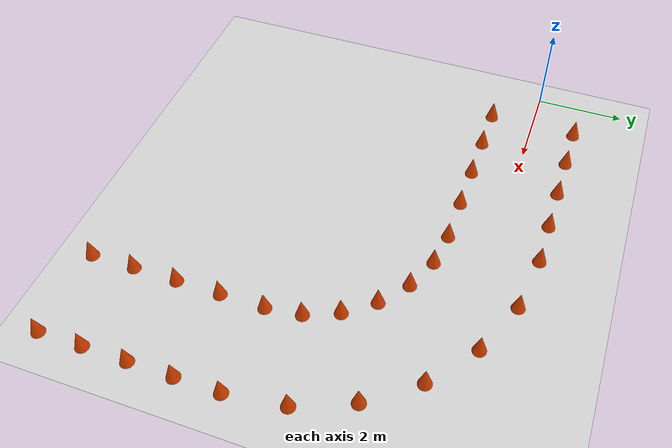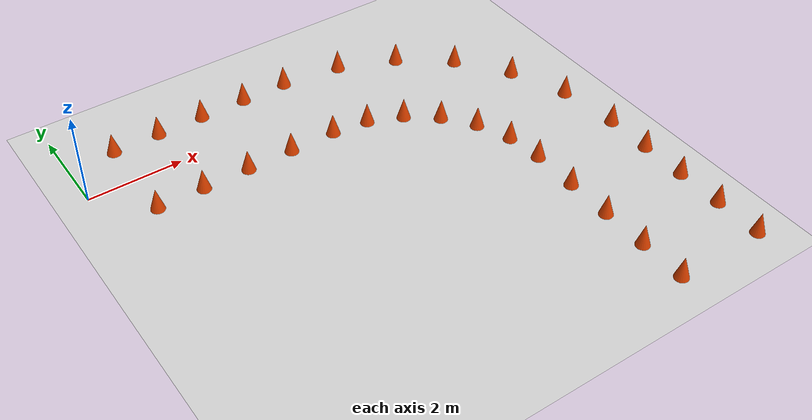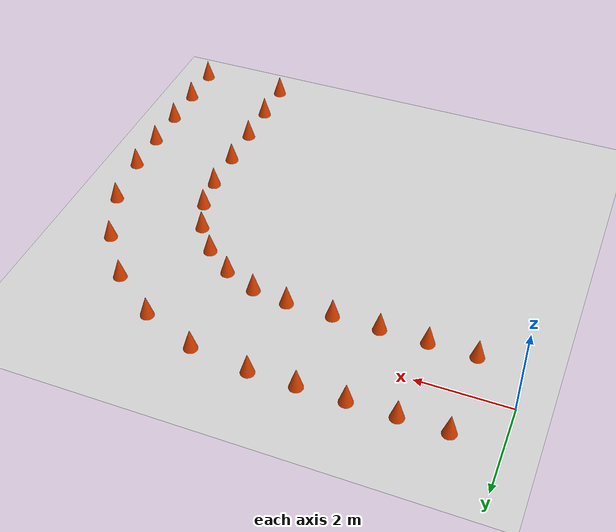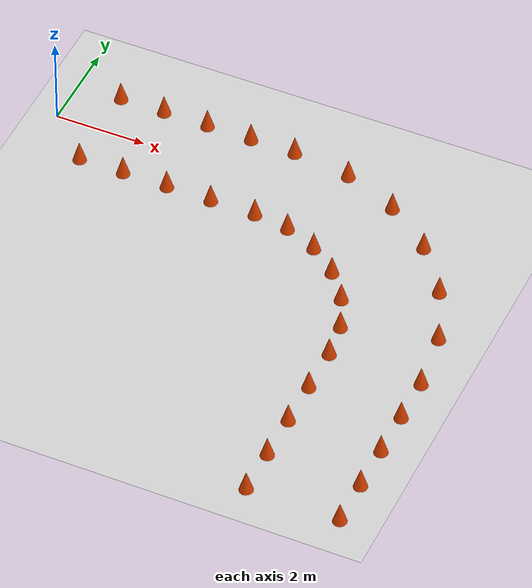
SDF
<?xml version="1.0"?>
<sdf version="1.10">
  <world name="turn_navigation">

    <plugin filename="gz-sim-physics-system"
            name="gz::sim::systems::Physics"/>
    <plugin filename="gz-sim-sensors-system"
            name="gz::sim::systems::Sensors">
      <render_engine>ogre2</render_engine>
    </plugin>
    <plugin filename="gz-sim-scene-broadcaster-system"
            name="gz::sim::systems::SceneBroadcaster"/>
    <plugin filename="gz-sim-user-commands-system"
            name="gz::sim::systems::UserCommands"/>

    <light name="sun" type="directional">
      <cast_shadows>true</cast_shadows>
      <pose>0 0 10 0 0 0</pose>
      <diffuse>1 1 1 1</diffuse>
      <specular>0.5 0.5 0.5 1</specular>
      <direction>-0.5 0.1 -0.9</direction>
    </light>

    <model name="ground_plane">
      <static>true</static>
      <link name="link">
        <collision name="collision">
          <geometry><plane><normal>0 0 1</normal></plane></geometry>
        </collision>
        <visual name="visual">
          <geometry><plane><normal>0 0 1</normal><size>100 100</size></plane></geometry>
          <material>
            <ambient>0.8 0.8 0.8 1</ambient>
            <diffuse>0.8 0.8 0.8 1</diffuse>
          </material>
        </visual>
      </link>
    </model>

    <!-- Straight approach -->
    <model name="cone_inner_s1"><static>true</static><pose>1.00 1.00 0.25 0 0 0</pose><link name="link"><visual name="visual"><geometry><cone><radius>0.15</radius><length>0.5</length></cone></geometry><material><ambient>1 0.3 0 1</ambient><diffuse>1 0.3 0 1</diffuse></material></visual><collision name="collision"><geometry><cone><radius>0.15</radius><length>0.5</length></cone></geometry></collision></link></model>
    <model name="cone_outer_s1"><static>true</static><pose>1.00 -1.00 0.25 0 0 0</pose><link name="link"><visual name="visual"><geometry><cone><radius>0.15</radius><length>0.5</length></cone></geometry><material><ambient>1 0.3 0 1</ambient><diffuse>1 0.3 0 1</diffuse></material></visual><collision name="collision"><geometry><cone><radius>0.15</radius><length>0.5</length></cone></geometry></collision></link></model>
    <model name="cone_inner_s2"><static>true</static><pose>2.00 1.00 0.25 0 0 0</pose><link name="link"><visual name="visual"><geometry><cone><radius>0.15</radius><length>0.5</length></cone></geometry><material><ambient>1 0.3 0 1</ambient><diffuse>1 0.3 0 1</diffuse></material></visual><collision name="collision"><geometry><cone><radius>0.15</radius><length>0.5</length></cone></geometry></collision></link></model>
    <model name="cone_outer_s2"><static>true</static><pose>2.00 -1.00 0.25 0 0 0</pose><link name="link"><visual name="visual"><geometry><cone><radius>0.15</radius><length>0.5</length></cone></geometry><material><ambient>1 0.3 0 1</ambient><diffuse>1 0.3 0 1</diffuse></material></visual><collision name="collision"><geometry><cone><radius>0.15</radius><length>0.5</length></cone></geometry></collision></link></model>
    <model name="cone_inner_s3"><static>true</static><pose>3.00 1.00 0.25 0 0 0</pose><link name="link"><visual name="visual"><geometry><cone><radius>0.15</radius><length>0.5</length></cone></geometry><material><ambient>1 0.3 0 1</ambient><diffuse>1 0.3 0 1</diffuse></material></visual><collision name="collision"><geometry><cone><radius>0.15</radius><length>0.5</length></cone></geometry></collision></link></model>
    <model name="cone_outer_s3"><static>true</static><pose>3.00 -1.00 0.25 0 0 0</pose><link name="link"><visual name="visual"><geometry><cone><radius>0.15</radius><length>0.5</length></cone></geometry><material><ambient>1 0.3 0 1</ambient><diffuse>1 0.3 0 1</diffuse></material></visual><collision name="collision"><geometry><cone><radius>0.15</radius><length>0.5</length></cone></geometry></collision></link></model>
    <model name="cone_inner_s4"><static>true</static><pose>4.00 1.00 0.25 0 0 0</pose><link name="link"><visual name="visual"><geometry><cone><radius>0.15</radius><length>0.5</length></cone></geometry><material><ambient>1 0.3 0 1</ambient><diffuse>1 0.3 0 1</diffuse></material></visual><collision name="collision"><geometry><cone><radius>0.15</radius><length>0.5</length></cone></geometry></collision></link></model>
    <model name="cone_outer_s4"><static>true</static><pose>4.00 -1.00 0.25 0 0 0</pose><link name="link"><visual name="visual"><geometry><cone><radius>0.15</radius><length>0.5</length></cone></geometry><material><ambient>1 0.3 0 1</ambient><diffuse>1 0.3 0 1</diffuse></material></visual><collision name="collision"><geometry><cone><radius>0.15</radius><length>0.5</length></cone></geometry></collision></link></model>
    <model name="cone_inner_s5"><static>true</static><pose>5.00 1.00 0.25 0 0 0</pose><link name="link"><visual name="visual"><geometry><cone><radius>0.15</radius><length>0.5</length></cone></geometry><material><ambient>1 0.3 0 1</ambient><diffuse>1 0.3 0 1</diffuse></material></visual><collision name="collision"><geometry><cone><radius>0.15</radius><length>0.5</length></cone></geometry></collision></link></model>
    <model name="cone_outer_s5"><static>true</static><pose>5.00 -1.00 0.25 0 0 0</pose><link name="link"><visual name="visual"><geometry><cone><radius>0.15</radius><length>0.5</length></cone></geometry><material><ambient>1 0.3 0 1</ambient><diffuse>1 0.3 0 1</diffuse></material></visual><collision name="collision"><geometry><cone><radius>0.15</radius><length>0.5</length></cone></geometry></collision></link></model>

    <!-- Curve -->
    <model name="cone_inner_c0"><static>true</static><pose>5.00 -1.00 0.25 0 0 0</pose><link name="link"><visual name="visual"><geometry><cone><radius>0.15</radius><length>0.5</length></cone></geometry><material><ambient>1 0.3 0 1</ambient><diffuse>1 0.3 0 1</diffuse></material></visual><collision name="collision"><geometry><cone><radius>0.15</radius><length>0.5</length></cone></geometry></collision></link></model>
    <model name="cone_outer_c0"><static>true</static><pose>5.00 1.00 0.25 0 0 0</pose><link name="link"><visual name="visual"><geometry><cone><radius>0.15</radius><length>0.5</length></cone></geometry><material><ambient>1 0.3 0 1</ambient><diffuse>1 0.3 0 1</diffuse></material></visual><collision name="collision"><geometry><cone><radius>0.15</radius><length>0.5</length></cone></geometry></collision></link></model>
    <model name="cone_inner_c1"><static>true</static><pose>5.78 -1.10 0.25 0 0 0</pose><link name="link"><visual name="visual"><geometry><cone><radius>0.15</radius><length>0.5</length></cone></geometry><material><ambient>1 0.3 0 1</ambient><diffuse>1 0.3 0 1</diffuse></material></visual><collision name="collision"><geometry><cone><radius>0.15</radius><length>0.5</length></cone></geometry></collision></link></model>
    <model name="cone_outer_c1"><static>true</static><pose>6.29 0.83 0.25 0 0 0</pose><link name="link"><visual name="visual"><geometry><cone><radius>0.15</radius><length>0.5</length></cone></geometry><material><ambient>1 0.3 0 1</ambient><diffuse>1 0.3 0 1</diffuse></material></visual><collision name="collision"><geometry><cone><radius>0.15</radius><length>0.5</length></cone></geometry></collision></link></model>
    <model name="cone_inner_c2"><static>true</static><pose>6.50 -1.40 0.25 0 0 0</pose><link name="link"><visual name="visual"><geometry><cone><radius>0.15</radius><length>0.5</length></cone></geometry><material><ambient>1 0.3 0 1</ambient><diffuse>1 0.3 0 1</diffuse></material></visual><collision name="collision"><geometry><cone><radius>0.15</radius><length>0.5</length></cone></geometry></collision></link></model>
    <model name="cone_outer_c2"><static>true</static><pose>7.50 0.33 0.25 0 0 0</pose><link name="link"><visual name="visual"><geometry><cone><radius>0.15</radius><length>0.5</length></cone></geometry><material><ambient>1 0.3 0 1</ambient><diffuse>1 0.3 0 1</diffuse></material></visual><collision name="collision"><geometry><cone><radius>0.15</radius><length>0.5</length></cone></geometry></collision></link></model>
    <model name="cone_inner_c3"><static>true</static><pose>7.12 -1.88 0.25 0 0 0</pose><link name="link"><visual name="visual"><geometry><cone><radius>0.15</radius><length>0.5</length></cone></geometry><material><ambient>1 0.3 0 1</ambient><diffuse>1 0.3 0 1</diffuse></material></visual><collision name="collision"><geometry><cone><radius>0.15</radius><length>0.5</length></cone></geometry></collision></link></model>
    <model name="cone_outer_c3"><static>true</static><pose>8.54 -0.46 0.25 0 0 0</pose><link name="link"><visual name="visual"><geometry><cone><radius>0.15</radius><length>0.5</length></cone></geometry><material><ambient>1 0.3 0 1</ambient><diffuse>1 0.3 0 1</diffuse></material></visual><collision name="collision"><geometry><cone><radius>0.15</radius><length>0.5</length></cone></geometry></collision></link></model>
    <model name="cone_inner_c4"><static>true</static><pose>7.60 -2.50 0.25 0 0 0</pose><link name="link"><visual name="visual"><geometry><cone><radius>0.15</radius><length>0.5</length></cone></geometry><material><ambient>1 0.3 0 1</ambient><diffuse>1 0.3 0 1</diffuse></material></visual><collision name="collision"><geometry><cone><radius>0.15</radius><length>0.5</length></cone></geometry></collision></link></model>
    <model name="cone_outer_c4"><static>true</static><pose>9.33 -1.50 0.25 0 0 0</pose><link name="link"><visual name="visual"><geometry><cone><radius>0.15</radius><length>0.5</length></cone></geometry><material><ambient>1 0.3 0 1</ambient><diffuse>1 0.3 0 1</diffuse></material></visual><collision name="collision"><geometry><cone><radius>0.15</radius><length>0.5</length></cone></geometry></collision></link></model>
    <model name="cone_inner_c5"><static>true</static><pose>7.90 -3.22 0.25 0 0 0</pose><link name="link"><visual name="visual"><geometry><cone><radius>0.15</radius><length>0.5</length></cone></geometry><material><ambient>1 0.3 0 1</ambient><diffuse>1 0.3 0 1</diffuse></material></visual><collision name="collision"><geometry><cone><radius>0.15</radius><length>0.5</length></cone></geometry></collision></link></model>
    <model name="cone_outer_c5"><static>true</static><pose>9.83 -2.71 0.25 0 0 0</pose><link name="link"><visual name="visual"><geometry><cone><radius>0.15</radius><length>0.5</length></cone></geometry><material><ambient>1 0.3 0 1</ambient><diffuse>1 0.3 0 1</diffuse></material></visual><collision name="collision"><geometry><cone><radius>0.15</radius><length>0.5</length></cone></geometry></collision></link></model>
    <model name="cone_inner_c6"><static>true</static><pose>8.00 -4.00 0.25 0 0 0</pose><link name="link"><visual name="visual"><geometry><cone><radius>0.15</radius><length>0.5</length></cone></geometry><material><ambient>1 0.3 0 1</ambient><diffuse>1 0.3 0 1</diffuse></material></visual><collision name="collision"><geometry><cone><radius>0.15</radius><length>0.5</length></cone></geometry></collision></link></model>
    <model name="cone_outer_c6"><static>true</static><pose>10.00 -4.00 0.25 0 0 0</pose><link name="link"><visual name="visual"><geometry><cone><radius>0.15</radius><length>0.5</length></cone></geometry><material><ambient>1 0.3 0 1</ambient><diffuse>1 0.3 0 1</diffuse></material></visual><collision name="collision"><geometry><cone><radius>0.15</radius><length>0.5</length></cone></geometry></collision></link></model>

    <!-- Exit straight -->
    <model name="cone_inner_e1"><static>true</static><pose>8.00 -5.00 0.25 0 0 0</pose><link name="link"><visual name="visual"><geometry><cone><radius>0.15</radius><length>0.5</length></cone></geometry><material><ambient>1 0.3 0 1</ambient><diffuse>1 0.3 0 1</diffuse></material></visual><collision name="collision"><geometry><cone><radius>0.15</radius><length>0.5</length></cone></geometry></collision></link></model>
    <model name="cone_outer_e1"><static>true</static><pose>10.00 -5.00 0.25 0 0 0</pose><link name="link"><visual name="visual"><geometry><cone><radius>0.15</radius><length>0.5</length></cone></geometry><material><ambient>1 0.3 0 1</ambient><diffuse>1 0.3 0 1</diffuse></material></visual><collision name="collision"><geometry><cone><radius>0.15</radius><length>0.5</length></cone></geometry></collision></link></model>
    <model name="cone_inner_e2"><static>true</static><pose>8.00 -6.00 0.25 0 0 0</pose><link name="link"><visual name="visual"><geometry><cone><radius>0.15</radius><length>0.5</length></cone></geometry><material><ambient>1 0.3 0 1</ambient><diffuse>1 0.3 0 1</diffuse></material></visual><collision name="collision"><geometry><cone><radius>0.15</radius><length>0.5</length></cone></geometry></collision></link></model>
    <model name="cone_outer_e2"><static>true</static><pose>10.00 -6.00 0.25 0 0 0</pose><link name="link"><visual name="visual"><geometry><cone><radius>0.15</radius><length>0.5</length></cone></geometry><material><ambient>1 0.3 0 1</ambient><diffuse>1 0.3 0 1</diffuse></material></visual><collision name="collision"><geometry><cone><radius>0.15</radius><length>0.5</length></cone></geometry></collision></link></model>
    <model name="cone_inner_e3"><static>true</static><pose>8.00 -7.00 0.25 0 0 0</pose><link name="link"><visual name="visual"><geometry><cone><radius>0.15</radius><length>0.5</length></cone></geometry><material><ambient>1 0.3 0 1</ambient><diffuse>1 0.3 0 1</diffuse></material></visual><collision name="collision"><geometry><cone><radius>0.15</radius><length>0.5</length></cone></geometry></collision></link></model>
    <model name="cone_outer_e3"><static>true</static><pose>10.00 -7.00 0.25 0 0 0</pose><link name="link"><visual name="visual"><geometry><cone><radius>0.15</radius><length>0.5</length></cone></geometry><material><ambient>1 0.3 0 1</ambient><diffuse>1 0.3 0 1</diffuse></material></visual><collision name="collision"><geometry><cone><radius>0.15</radius><length>0.5</length></cone></geometry></collision></link></model>
    <model name="cone_inner_e4"><static>true</static><pose>8.00 -8.00 0.25 0 0 0</pose><link name="link"><visual name="visual"><geometry><cone><radius>0.15</radius><length>0.5</length></cone></geometry><material><ambient>1 0.3 0 1</ambient><diffuse>1 0.3 0 1</diffuse></material></visual><collision name="collision"><geometry><cone><radius>0.15</radius><length>0.5</length></cone></geometry></collision></link></model>
    <model name="cone_outer_e4"><static>true</static><pose>10.00 -8.00 0.25 0 0 0</pose><link name="link"><visual name="visual"><geometry><cone><radius>0.15</radius><length>0.5</length></cone></geometry><material><ambient>1 0.3 0 1</ambient><diffuse>1 0.3 0 1</diffuse></material></visual><collision name="collision"><geometry><cone><radius>0.15</radius><length>0.5</length></cone></geometry></collision></link></model>

    <gui fullscreen="0">
      <camera name="user_camera">
        <pose>5 -4 18 0 1.4 0</pose>
      </camera>
    </gui>

  </world>
</sdf>
